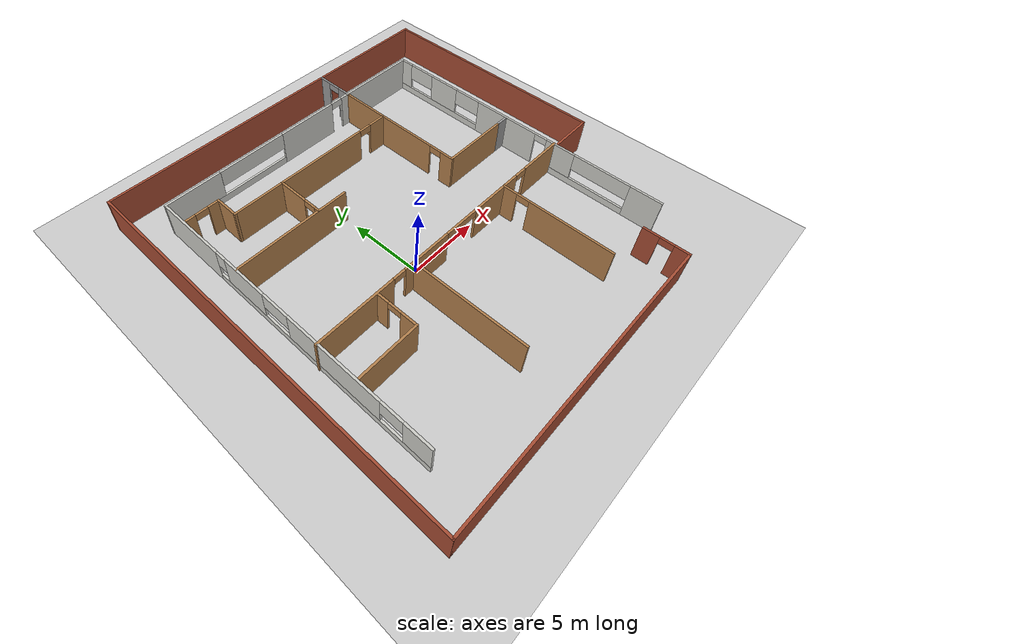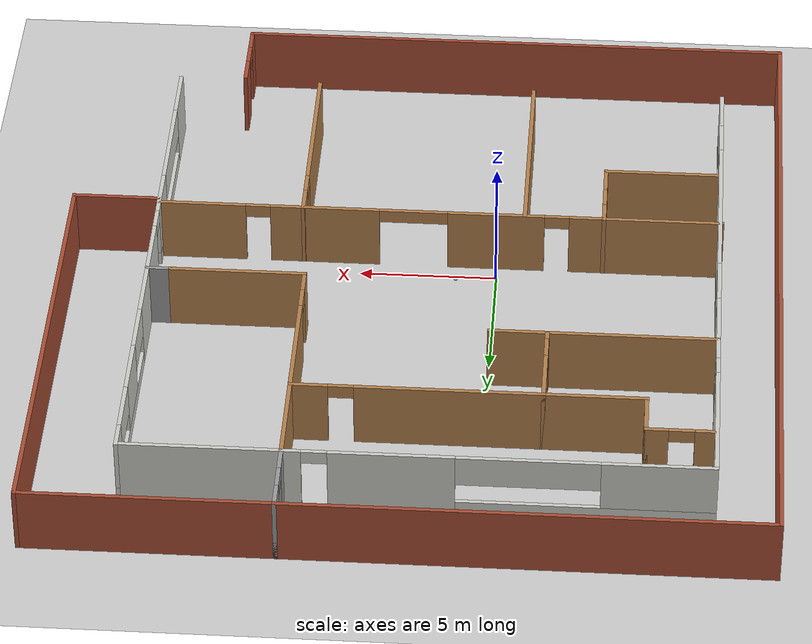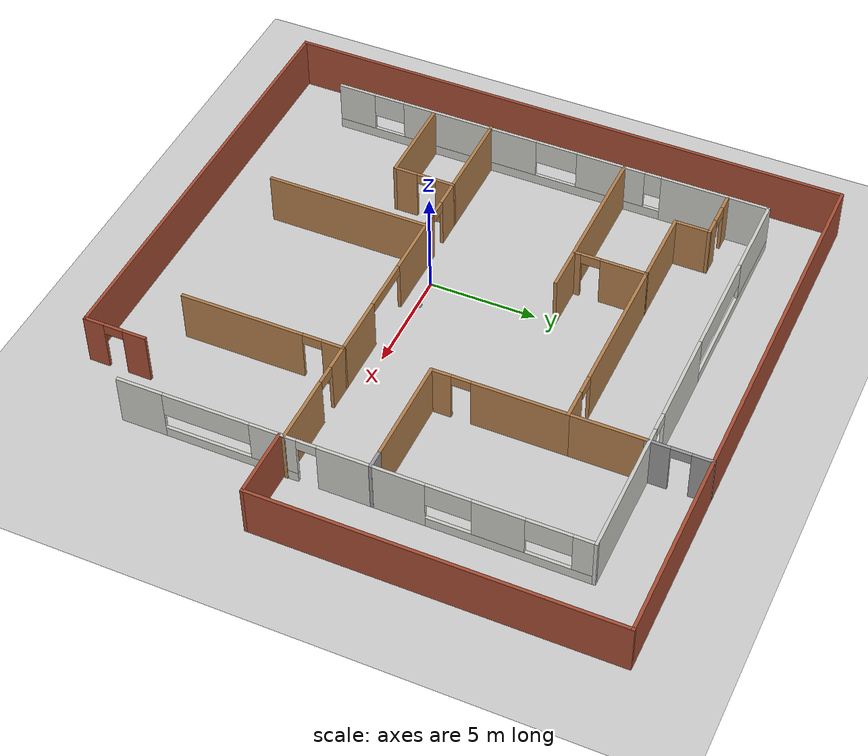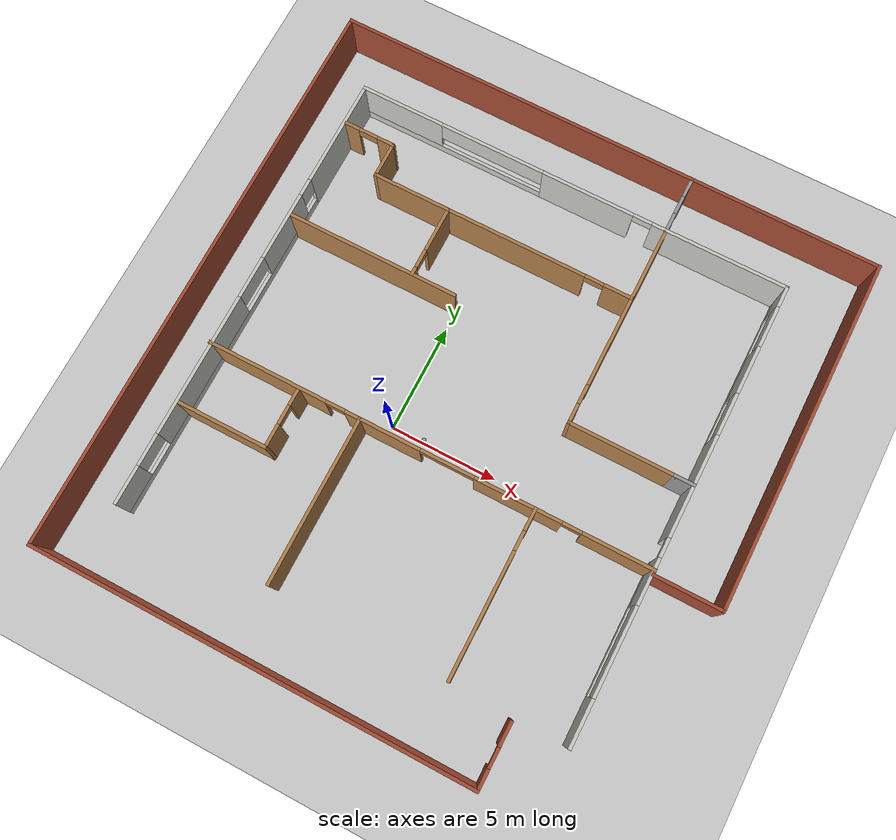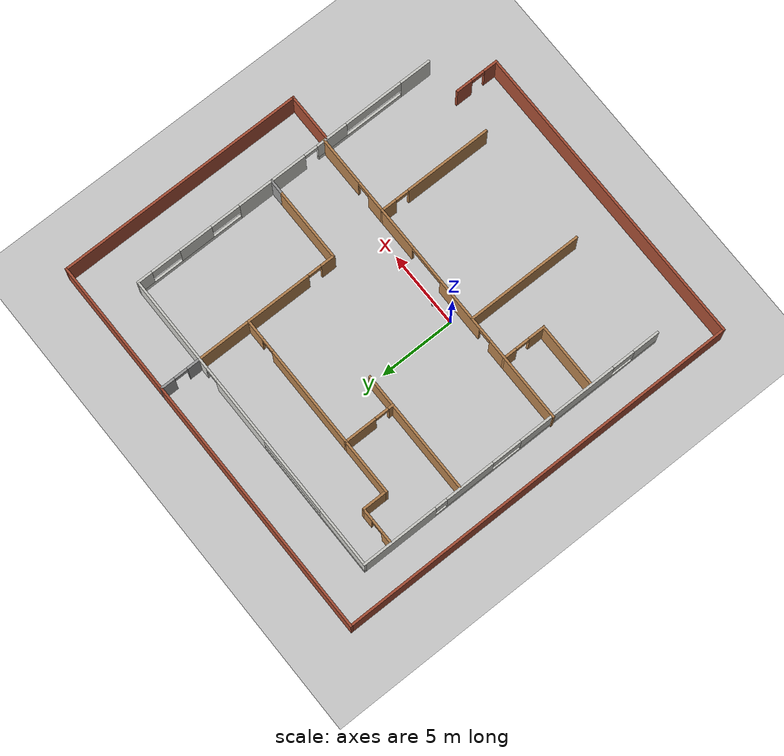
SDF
<sdf version="1.6">
 <world name="default">
  <model name="ground_plane">
   <static>1</static>
   <link name="link">
    <collision name="collision">
     <geometry><plane><normal>0 0 1</normal><size>1000 1000</size></plane></geometry>
     <surface>
      <contact><collide_bitmask>65535</collide_bitmask></contact>
      <friction><ode><mu>100</mu><mu2>50</mu2></ode></friction>
     </surface>
    </collision>
    <visual name="visual">
     <cast_shadows>0</cast_shadows>
     <geometry><plane><normal>0 0 1</normal><size>1000 1000</size></plane></geometry>
     <material>
      <script><uri>file://media/materials/scripts/gazebo.material</uri><name>Gazebo/Grey</name></script>
     </material>
    </visual>
   </link>
  </model>
  <model name="myWorld">
   <pose>2.63259 2.04676 0 0 -0 0</pose>
   <link name="Wall_0">
    <pose>-10.7788 0.167812 0 0 0 -1.5708</pose>
    <visual name="Wall_0_Visual_0">
     <pose>-8.06574 0 1.25 0 -0 0</pose>
     <geometry><box><size>5.11851 0.15 2.5</size></box></geometry>
     <material>
      <script><uri>file://media/materials/scripts/gazebo.material</uri><name>Gazebo/CeilingTiled</name></script>
      <ambient>0.435294 0.796078 0.67451 1</ambient>
     </material>
     <meta><layer>0</layer></meta>
    </visual>
    <collision name="Wall_0_Collision_0">
     <geometry><box><size>5.11851 0.15 2.5</size></box></geometry>
     <pose>-8.06574 0 1.25 0 -0 0</pose>
    </collision>
    <visual name="Wall_0_Visual_1">
     <pose>2.55926 0 0.25 0 -0 0</pose>
     <geometry><box><size>16.1315 0.15 0.5</size></box></geometry>
     <material>
      <script><uri>file://media/materials/scripts/gazebo.material</uri><name>Gazebo/CeilingTiled</name></script>
      <ambient>0.435294 0.796078 0.67451 1</ambient>
     </material>
     <meta><layer>0</layer></meta>
    </visual>
    <collision name="Wall_0_Collision_1">
     <geometry><box><size>16.1315 0.15 0.5</size></box></geometry>
     <pose>2.55926 0 0.25 0 -0 0</pose>
    </collision>
    <visual name="Wall_0_Visual_2">
     <pose>-3.05702 0 1.5 0 -0 0</pose>
     <geometry><box><size>3.29893 0.15 2</size></box></geometry>
     <material>
      <script><uri>file://media/materials/scripts/gazebo.material</uri><name>Gazebo/CeilingTiled</name></script>
      <ambient>0.435294 0.796078 0.67451 1</ambient>
     </material>
     <meta><layer>0</layer></meta>
    </visual>
    <collision name="Wall_0_Collision_2">
     <geometry><box><size>3.29893 0.15 2</size></box></geometry>
     <pose>-3.05702 0 1.5 0 -0 0</pose>
    </collision>
    <visual name="Wall_0_Visual_3">
     <pose>3.95094 0 1.5 0 -0 0</pose>
     <geometry><box><size>6.717 0.15 2</size></box></geometry>
     <material>
      <script><uri>file://media/materials/scripts/gazebo.material</uri><name>Gazebo/CeilingTiled</name></script>
      <ambient>0.435294 0.796078 0.67451 1</ambient>
     </material>
     <meta><layer>0</layer></meta>
    </visual>
    <collision name="Wall_0_Collision_3">
     <geometry><box><size>6.717 0.15 2</size></box></geometry>
     <pose>3.95094 0 1.5 0 -0 0</pose>
    </collision>
    <visual name="Wall_0_Visual_4">
     <pose>9.71722 0 1.5 0 -0 0</pose>
     <geometry><box><size>1.81556 0.15 2</size></box></geometry>
     <material>
      <script><uri>file://media/materials/scripts/gazebo.material</uri><name>Gazebo/CeilingTiled</name></script>
      <ambient>0.435294 0.796078 0.67451 1</ambient>
     </material>
     <meta><layer>0</layer></meta>
    </visual>
    <collision name="Wall_0_Collision_4">
     <geometry><box><size>1.81556 0.15 2</size></box></geometry>
     <pose>9.71722 0 1.5 0 -0 0</pose>
    </collision>
    <visual name="Wall_0_Visual_5">
     <pose>-5.10649 0 1.9 0 -0 0</pose>
     <geometry><box><size>0.8 0.15 1.2</size></box></geometry>
     <material>
      <script><uri>file://media/materials/scripts/gazebo.material</uri><name>Gazebo/CeilingTiled</name></script>
      <ambient>0.435294 0.796078 0.67451 1</ambient>
     </material>
     <meta><layer>0</layer></meta>
    </visual>
    <collision name="Wall_0_Collision_5">
     <geometry><box><size>0.8 0.15 1.2</size></box></geometry>
     <pose>-5.10649 0 1.9 0 -0 0</pose>
    </collision>
    <visual name="Wall_0_Visual_6">
     <pose>-0.407555 0 1.9 0 -0 0</pose>
     <geometry><box><size>2 0.15 1.2</size></box></geometry>
     <material>
      <script><uri>file://media/materials/scripts/gazebo.material</uri><name>Gazebo/CeilingTiled</name></script>
      <ambient>0.435294 0.796078 0.67451 1</ambient>
     </material>
     <meta><layer>0</layer></meta>
    </visual>
    <collision name="Wall_0_Collision_6">
     <geometry><box><size>2 0.15 1.2</size></box></geometry>
     <pose>-0.407555 0 1.9 0 -0 0</pose>
    </collision>
    <visual name="Wall_0_Visual_7">
     <pose>8.05945 0 1.9 0 -0 0</pose>
     <geometry><box><size>1.5 0.15 1.2</size></box></geometry>
     <material>
      <script><uri>file://media/materials/scripts/gazebo.material</uri><name>Gazebo/CeilingTiled</name></script>
      <ambient>0.435294 0.796078 0.67451 1</ambient>
     </material>
     <meta><layer>0</layer></meta>
    </visual>
    <collision name="Wall_0_Collision_7">
     <geometry><box><size>1.5 0.15 1.2</size></box></geometry>
     <pose>8.05945 0 1.9 0 -0 0</pose>
    </collision>
   </link>
   <link name="Wall_10">
    <collision name="Wall_10_Collision">
     <geometry><box><size>7.75 0.15 2.5</size></box></geometry>
     <pose>0 0 1.25 0 -0 0</pose>
    </collision>
    <visual name="Wall_10_Visual">
     <pose>0 0 1.25 0 -0 0</pose>
     <geometry><box><size>7.75 0.15 2.5</size></box></geometry>
     <material>
      <script><uri>file://media/materials/scripts/gazebo.material</uri><name>Gazebo/Wood</name></script>
      <ambient>1 1 1 1</ambient>
     </material>
     <meta><layer>0</layer></meta>
    </visual>
    <pose>-3.63916 -6.5453 0 0 0 -1.5708</pose>
   </link>
   <link name="Wall_109">
    <pose>4.125 12 0 0 -0 1.5708</pose>
    <visual name="Wall_109_Visual_0">
     <pose>-0.939554 0 1.25 0 -0 0</pose>
     <geometry><box><size>1.12089 0.15 2.5</size></box></geometry>
     <material>
      <script><uri>file://media/materials/scripts/gazebo.material</uri><name>Gazebo/Grey</name></script>
      <ambient>1 1 1 1</ambient>
     </material>
     <meta><layer>0</layer></meta>
    </visual>
    <collision name="Wall_109_Collision_0">
     <geometry><box><size>1.12089 0.15 2.5</size></box></geometry>
     <pose>-0.939554 0 1.25 0 -0 0</pose>
    </collision>
    <visual name="Wall_109_Visual_1">
     <pose>1.01045 0 1.25 0 -0 0</pose>
     <geometry><box><size>0.979109 0.15 2.5</size></box></geometry>
     <material>
      <script><uri>file://media/materials/scripts/gazebo.material</uri><name>Gazebo/Grey</name></script>
      <ambient>1 1 1 1</ambient>
     </material>
     <meta><layer>0</layer></meta>
    </visual>
    <collision name="Wall_109_Collision_1">
     <geometry><box><size>0.979109 0.15 2.5</size></box></geometry>
     <pose>1.01045 0 1.25 0 -0 0</pose>
    </collision>
    <visual name="Wall_109_Visual_2">
     <pose>0.070891 0 2.25 0 -0 0</pose>
     <geometry><box><size>0.9 0.15 0.5</size></box></geometry>
     <material>
      <script><uri>file://media/materials/scripts/gazebo.material</uri><name>Gazebo/Grey</name></script>
      <ambient>1 1 1 1</ambient>
     </material>
     <meta><layer>0</layer></meta>
    </visual>
    <collision name="Wall_109_Collision_2">
     <geometry><box><size>0.9 0.15 0.5</size></box></geometry>
     <pose>0.070891 0 2.25 0 -0 0</pose>
    </collision>
   </link>
   <link name="Wall_110">
    <collision name="Wall_110_Collision">
     <geometry><box><size>17.25 0.15 2.5</size></box></geometry>
     <pose>0 0 1.25 0 -0 0</pose>
    </collision>
    <visual name="Wall_110_Visual">
     <pose>0 0 1.25 0 -0 0</pose>
     <geometry><box><size>17.25 0.15 2.5</size></box></geometry>
     <material>
      <script><uri>file://media/materials/scripts/gazebo.material</uri><name>Gazebo/Bricks</name></script>
      <ambient>1 1 1 1</ambient>
     </material>
     <meta><layer>0</layer></meta>
    </visual>
    <pose>-4.425 13.425 0 0 -0 3.14159</pose>
   </link>
   <link name="Wall_111">
    <collision name="Wall_111_Collision">
     <geometry><box><size>27 0.15 2.5</size></box></geometry>
     <pose>0 0 1.25 0 -0 0</pose>
    </collision>
    <visual name="Wall_111_Visual">
     <pose>0 0 1.25 0 -0 0</pose>
     <geometry><box><size>27 0.15 2.5</size></box></geometry>
     <material>
      <script><uri>file://media/materials/scripts/gazebo.material</uri><name>Gazebo/Bricks</name></script>
      <ambient>1 1 1 1</ambient>
     </material>
     <meta><layer>0</layer></meta>
    </visual>
    <pose>-12.975 0 0 0 0 -1.5708</pose>
   </link>
   <link name="Wall_112">
    <collision name="Wall_112_Collision">
     <geometry><box><size>20.5 0.15 2.5</size></box></geometry>
     <pose>0 0 1.25 0 -0 0</pose>
    </collision>
    <visual name="Wall_112_Visual">
     <pose>0 0 1.25 0 -0 0</pose>
     <geometry><box><size>20.5 0.15 2.5</size></box></geometry>
     <material>
      <script><uri>file://media/materials/scripts/gazebo.material</uri><name>Gazebo/Bricks</name></script>
      <ambient>1 1 1 1</ambient>
     </material>
     <meta><layer>0</layer></meta>
    </visual>
    <pose>-2.8 -13.425 0 0 -0 0</pose>
   </link>
   <link name="Wall_113">
    <pose>7.375 -12 0 0 -0 1.5708</pose>
    <visual name="Wall_113_Visual_0">
     <pose>-1.00437 0 1.25 0 -0 0</pose>
     <geometry><box><size>0.991263 0.15 2.5</size></box></geometry>
     <material>
      <script><uri>file://media/materials/scripts/gazebo.material</uri><name>Gazebo/Bricks</name></script>
      <ambient>1 1 1 1</ambient>
     </material>
     <meta><layer>0</layer></meta>
    </visual>
    <collision name="Wall_113_Collision_0">
     <geometry><box><size>0.991263 0.15 2.5</size></box></geometry>
     <pose>-1.00437 0 1.25 0 -0 0</pose>
    </collision>
    <visual name="Wall_113_Visual_1">
     <pose>0.945632 0 1.25 0 -0 0</pose>
     <geometry><box><size>1.10874 0.15 2.5</size></box></geometry>
     <material>
      <script><uri>file://media/materials/scripts/gazebo.material</uri><name>Gazebo/Bricks</name></script>
      <ambient>1 1 1 1</ambient>
     </material>
     <meta><layer>0</layer></meta>
    </visual>
    <collision name="Wall_113_Collision_1">
     <geometry><box><size>1.10874 0.15 2.5</size></box></geometry>
     <pose>0.945632 0 1.25 0 -0 0</pose>
    </collision>
    <visual name="Wall_113_Visual_2">
     <pose>-0.058737 0 2.25 0 -0 0</pose>
     <geometry><box><size>0.9 0.15 0.5</size></box></geometry>
     <material>
      <script><uri>file://media/materials/scripts/gazebo.material</uri><name>Gazebo/Bricks</name></script>
      <ambient>1 1 1 1</ambient>
     </material>
     <meta><layer>0</layer></meta>
    </visual>
    <collision name="Wall_113_Collision_2">
     <geometry><box><size>0.9 0.15 0.5</size></box></geometry>
     <pose>-0.058737 0 2.25 0 -0 0</pose>
    </collision>
   </link>
   <link name="Wall_115">
    <collision name="Wall_115_Collision">
     <geometry><box><size>9 0.15 2.5</size></box></geometry>
     <pose>0 0 1.25 0 -0 0</pose>
    </collision>
    <visual name="Wall_115_Visual">
     <pose>0 0 1.25 0 -0 0</pose>
     <geometry><box><size>9 0.15 2.5</size></box></geometry>
     <material>
      <script><uri>file://media/materials/scripts/gazebo.material</uri><name>Gazebo/Bricks</name></script>
      <ambient>1 1 1 1</ambient>
     </material>
     <meta><layer>0</layer></meta>
    </visual>
    <pose>8.55 13.425 0 0 -0 0</pose>
   </link>
   <link name="Wall_116">
    <collision name="Wall_116_Collision">
     <geometry><box><size>16.5 0.15 2.5</size></box></geometry>
     <pose>0 0 1.25 0 -0 0</pose>
    </collision>
    <visual name="Wall_116_Visual">
     <pose>0 0 1.25 0 -0 0</pose>
     <geometry><box><size>16.5 0.15 2.5</size></box></geometry>
     <material>
      <script><uri>file://media/materials/scripts/gazebo.material</uri><name>Gazebo/Bricks</name></script>
      <ambient>1 1 1 1</ambient>
     </material>
     <meta><layer>0</layer></meta>
    </visual>
    <pose>12.975 5.25 0 0 0 -1.5708</pose>
   </link>
   <link name="Wall_117">
    <collision name="Wall_117_Collision">
     <geometry><box><size>3.25 0.15 2.5</size></box></geometry>
     <pose>0 0 1.25 0 -0 0</pose>
    </collision>
    <visual name="Wall_117_Visual">
     <pose>0 0 1.25 0 -0 0</pose>
     <geometry><box><size>3.25 0.15 2.5</size></box></geometry>
     <material>
      <script><uri>file://media/materials/scripts/gazebo.material</uri><name>Gazebo/Bricks</name></script>
      <ambient>1 1 1 1</ambient>
     </material>
     <meta><layer>0</layer></meta>
    </visual>
    <pose>11.425 -2.925 0 0 -0 3.14159</pose>
   </link>
   <link name="Wall_12">
    <collision name="Wall_12_Collision">
     <geometry><box><size>8.25 0.15 2.5</size></box></geometry>
     <pose>0 0 1.25 0 -0 0</pose>
    </collision>
    <visual name="Wall_12_Visual">
     <pose>0 0 1.25 0 -0 0</pose>
     <geometry><box><size>8.25 0.15 2.5</size></box></geometry>
     <material>
      <script><uri>file://media/materials/scripts/gazebo.material</uri><name>Gazebo/Wood</name></script>
      <ambient>1 1 1 1</ambient>
     </material>
     <meta><layer>0</layer></meta>
    </visual>
    <pose>-6.72078 3.875 0 0 -0 0</pose>
   </link>
   <link name="Wall_14">
    <pose>-4.725 5.55 0 0 -0 1.5708</pose>
    <visual name="Wall_14_Visual_0">
     <pose>-1.54025 0 1.25 0 -0 0</pose>
     <geometry><box><size>0.419489 0.15 2.5</size></box></geometry>
     <material>
      <script><uri>file://media/materials/scripts/gazebo.material</uri><name>Gazebo/Wood</name></script>
      <ambient>1 1 1 1</ambient>
     </material>
     <meta><layer>0</layer></meta>
    </visual>
    <collision name="Wall_14_Collision_0">
     <geometry><box><size>0.419489 0.15 2.5</size></box></geometry>
     <pose>-1.54025 0 1.25 0 -0 0</pose>
    </collision>
    <visual name="Wall_14_Visual_1">
     <pose>0.659745 0 1.25 0 -0 0</pose>
     <geometry><box><size>2.18051 0.15 2.5</size></box></geometry>
     <material>
      <script><uri>file://media/materials/scripts/gazebo.material</uri><name>Gazebo/Wood</name></script>
      <ambient>1 1 1 1</ambient>
     </material>
     <meta><layer>0</layer></meta>
    </visual>
    <collision name="Wall_14_Collision_1">
     <geometry><box><size>2.18051 0.15 2.5</size></box></geometry>
     <pose>0.659745 0 1.25 0 -0 0</pose>
    </collision>
    <visual name="Wall_14_Visual_2">
     <pose>-0.880511 0 2.25 0 -0 0</pose>
     <geometry><box><size>0.9 0.15 0.5</size></box></geometry>
     <material>
      <script><uri>file://media/materials/scripts/gazebo.material</uri><name>Gazebo/Wood</name></script>
      <ambient>1 1 1 1</ambient>
     </material>
     <meta><layer>0</layer></meta>
    </visual>
    <collision name="Wall_14_Collision_2">
     <geometry><box><size>0.9 0.15 0.5</size></box></geometry>
     <pose>-0.880511 0 2.25 0 -0 0</pose>
    </collision>
   </link>
   <link name="Wall_15">
    <pose>-0.299999 7.225 0 0 -0 0</pose>
    <visual name="Wall_15_Visual_0">
     <pose>-1.14864 0 1.25 0 -0 0</pose>
     <geometry><box><size>6.70272 0.15 2.5</size></box></geometry>
     <material>
      <script><uri>file://media/materials/scripts/gazebo.material</uri><name>Gazebo/Wood</name></script>
      <ambient>1 1 1 1</ambient>
     </material>
     <meta><layer>0</layer></meta>
    </visual>
    <collision name="Wall_15_Collision_0">
     <geometry><box><size>6.70272 0.15 2.5</size></box></geometry>
     <pose>-1.14864 0 1.25 0 -0 0</pose>
    </collision>
    <visual name="Wall_15_Visual_1">
     <pose>3.80136 0 1.25 0 -0 0</pose>
     <geometry><box><size>1.39728 0.15 2.5</size></box></geometry>
     <material>
      <script><uri>file://media/materials/scripts/gazebo.material</uri><name>Gazebo/Wood</name></script>
      <ambient>1 1 1 1</ambient>
     </material>
     <meta><layer>0</layer></meta>
    </visual>
    <collision name="Wall_15_Collision_1">
     <geometry><box><size>1.39728 0.15 2.5</size></box></geometry>
     <pose>3.80136 0 1.25 0 -0 0</pose>
    </collision>
    <visual name="Wall_15_Visual_2">
     <pose>2.65272 0 2.25 0 -0 0</pose>
     <geometry><box><size>0.9 0.15 0.5</size></box></geometry>
     <material>
      <script><uri>file://media/materials/scripts/gazebo.material</uri><name>Gazebo/Wood</name></script>
      <ambient>1 1 1 1</ambient>
     </material>
     <meta><layer>0</layer></meta>
    </visual>
    <collision name="Wall_15_Collision_2">
     <geometry><box><size>0.9 0.15 0.5</size></box></geometry>
     <pose>2.65272 0 2.25 0 -0 0</pose>
    </collision>
   </link>
   <link name="Wall_16">
    <pose>4.125 4.175 0 0 0 -1.5708</pose>
    <visual name="Wall_16_Visual_0">
     <pose>-0.941433 0 1.25 0 -0 0</pose>
     <geometry><box><size>4.36714 0.15 2.5</size></box></geometry>
     <material>
      <script><uri>file://media/materials/scripts/gazebo.material</uri><name>Gazebo/Wood</name></script>
      <ambient>1 1 1 1</ambient>
     </material>
     <meta><layer>0</layer></meta>
    </visual>
    <collision name="Wall_16_Collision_0">
     <geometry><box><size>4.36714 0.15 2.5</size></box></geometry>
     <pose>-0.941433 0 1.25 0 -0 0</pose>
    </collision>
    <visual name="Wall_16_Visual_1">
     <pose>2.63357 0 1.25 0 -0 0</pose>
     <geometry><box><size>0.982865 0.15 2.5</size></box></geometry>
     <material>
      <script><uri>file://media/materials/scripts/gazebo.material</uri><name>Gazebo/Wood</name></script>
      <ambient>1 1 1 1</ambient>
     </material>
     <meta><layer>0</layer></meta>
    </visual>
    <collision name="Wall_16_Collision_1">
     <geometry><box><size>0.982865 0.15 2.5</size></box></geometry>
     <pose>2.63357 0 1.25 0 -0 0</pose>
    </collision>
    <visual name="Wall_16_Visual_2">
     <pose>1.69213 0 2.25 0 -0 0</pose>
     <geometry><box><size>0.9 0.15 0.5</size></box></geometry>
     <material>
      <script><uri>file://media/materials/scripts/gazebo.material</uri><name>Gazebo/Wood</name></script>
      <ambient>1 1 1 1</ambient>
     </material>
     <meta><layer>0</layer></meta>
    </visual>
    <collision name="Wall_16_Collision_2">
     <geometry><box><size>0.9 0.15 0.5</size></box></geometry>
     <pose>1.69213 0 2.25 0 -0 0</pose>
    </collision>
   </link>
   <link name="Wall_17">
    <collision name="Wall_17_Collision">
     <geometry><box><size>5 0.15 2.5</size></box></geometry>
     <pose>0 0 1.25 0 -0 0</pose>
    </collision>
    <visual name="Wall_17_Visual">
     <pose>0 0 1.25 0 -0 0</pose>
     <geometry><box><size>5 0.15 2.5</size></box></geometry>
     <material>
      <script><uri>file://media/materials/scripts/gazebo.material</uri><name>Gazebo/Wood</name></script>
      <ambient>1 1 1 1</ambient>
     </material>
     <meta><layer>0</layer></meta>
    </visual>
    <pose>6.55 1.125 0 0 -0 0</pose>
   </link>
   <link name="Wall_18">
    <collision name="Wall_18_Collision">
     <geometry><box><size>1 0.15 2.5</size></box></geometry>
     <pose>0 0 1.25 0 -0 0</pose>
    </collision>
    <visual name="Wall_18_Visual">
     <pose>0 0 1.25 0 -0 0</pose>
     <geometry><box><size>1 0.15 2.5</size></box></geometry>
     <material>
      <script><uri>file://media/materials/scripts/gazebo.material</uri><name>Gazebo/Grey</name></script>
      <ambient>1 1 1 1</ambient>
     </material>
     <meta><layer>0</layer></meta>
    </visual>
    <pose>9.4 1.125 0 0 -0 0</pose>
   </link>
   <link name="Wall_2">
    <pose>9.82118 0.167812 0 0 -0 1.5708</pose>
    <visual name="Wall_2_Visual_0">
     <pose>-9.55148 0 1.25 0 -0 0</pose>
     <geometry><box><size>2.14703 0.15 2.5</size></box></geometry>
     <material>
      <script><uri>file://media/materials/scripts/gazebo.material</uri><name>Gazebo/CeilingTiled</name></script>
      <ambient>0.435294 0.796078 0.67451 1</ambient>
     </material>
     <meta><layer>0</layer></meta>
    </visual>
    <collision name="Wall_2_Collision_0">
     <geometry><box><size>2.14703 0.15 2.5</size></box></geometry>
     <pose>-9.55148 0 1.25 0 -0 0</pose>
    </collision>
    <visual name="Wall_2_Visual_1">
     <pose>0.932508 0 1.25 0 -0 0</pose>
     <geometry><box><size>4.76615 0.15 2.5</size></box></geometry>
     <material>
      <script><uri>file://media/materials/scripts/gazebo.material</uri><name>Gazebo/CeilingTiled</name></script>
      <ambient>0.435294 0.796078 0.67451 1</ambient>
     </material>
     <meta><layer>0</layer></meta>
    </visual>
    <collision name="Wall_2_Collision_1">
     <geometry><box><size>4.76615 0.15 2.5</size></box></geometry>
     <pose>0.932508 0 1.25 0 -0 0</pose>
    </collision>
    <visual name="Wall_2_Visual_2">
     <pose>-5.41427 0 0.25 0 -0 0</pose>
     <geometry><box><size>6.1274 0.15 0.5</size></box></geometry>
     <material>
      <script><uri>file://media/materials/scripts/gazebo.material</uri><name>Gazebo/CeilingTiled</name></script>
      <ambient>0.435294 0.796078 0.67451 1</ambient>
     </material>
     <meta><layer>0</layer></meta>
    </visual>
    <collision name="Wall_2_Collision_2">
     <geometry><box><size>6.1274 0.15 0.5</size></box></geometry>
     <pose>-5.41427 0 0.25 0 -0 0</pose>
    </collision>
    <visual name="Wall_2_Visual_3">
     <pose>6.97029 0 0.25 0 -0 0</pose>
     <geometry><box><size>7.30942 0.15 0.5</size></box></geometry>
     <material>
      <script><uri>file://media/materials/scripts/gazebo.material</uri><name>Gazebo/CeilingTiled</name></script>
      <ambient>0.435294 0.796078 0.67451 1</ambient>
     </material>
     <meta><layer>0</layer></meta>
    </visual>
    <collision name="Wall_2_Collision_3">
     <geometry><box><size>7.30942 0.15 0.5</size></box></geometry>
     <pose>6.97029 0 0.25 0 -0 0</pose>
    </collision>
    <visual name="Wall_2_Visual_4">
     <pose>-3.41427 0 1.5 0 -0 0</pose>
     <geometry><box><size>2.1274 0.15 2</size></box></geometry>
     <material>
      <script><uri>file://media/materials/scripts/gazebo.material</uri><name>Gazebo/CeilingTiled</name></script>
      <ambient>0.435294 0.796078 0.67451 1</ambient>
     </material>
     <meta><layer>0</layer></meta>
    </visual>
    <collision name="Wall_2_Collision_4">
     <geometry><box><size>2.1274 0.15 2</size></box></geometry>
     <pose>-3.41427 0 1.5 0 -0 0</pose>
    </collision>
    <visual name="Wall_2_Visual_5">
     <pose>-3.41427 0 1.5 0 -0 0</pose>
     <geometry><box><size>2.1274 0.15 2</size></box></geometry>
     <material>
      <script><uri>file://media/materials/scripts/gazebo.material</uri><name>Gazebo/CeilingTiled</name></script>
      <ambient>0.435294 0.796078 0.67451 1</ambient>
     </material>
     <meta><layer>0</layer></meta>
    </visual>
    <collision name="Wall_2_Collision_5">
     <geometry><box><size>2.1274 0.15 2</size></box></geometry>
     <pose>-3.41427 0 1.5 0 -0 0</pose>
    </collision>
    <visual name="Wall_2_Visual_6">
     <pose>6.45568 0 1.5 0 -0 0</pose>
     <geometry><box><size>2.2802 0.15 2</size></box></geometry>
     <material>
      <script><uri>file://media/materials/scripts/gazebo.material</uri><name>Gazebo/CeilingTiled</name></script>
      <ambient>0.435294 0.796078 0.67451 1</ambient>
     </material>
     <meta><layer>0</layer></meta>
    </visual>
    <collision name="Wall_2_Collision_6">
     <geometry><box><size>2.2802 0.15 2</size></box></geometry>
     <pose>6.45568 0 1.5 0 -0 0</pose>
    </collision>
    <visual name="Wall_2_Visual_7">
     <pose>10.1104 0 1.5 0 -0 0</pose>
     <geometry><box><size>1.02922 0.15 2</size></box></geometry>
     <material>
      <script><uri>file://media/materials/scripts/gazebo.material</uri><name>Gazebo/CeilingTiled</name></script>
      <ambient>0.435294 0.796078 0.67451 1</ambient>
     </material>
     <meta><layer>0</layer></meta>
    </visual>
    <collision name="Wall_2_Collision_7">
     <geometry><box><size>1.02922 0.15 2</size></box></geometry>
     <pose>10.1104 0 1.5 0 -0 0</pose>
    </collision>
    <visual name="Wall_2_Visual_8">
     <pose>-6.47797 0 1.9 0 -0 0</pose>
     <geometry><box><size>4 0.15 1.2</size></box></geometry>
     <material>
      <script><uri>file://media/materials/scripts/gazebo.material</uri><name>Gazebo/CeilingTiled</name></script>
      <ambient>0.435294 0.796078 0.67451 1</ambient>
     </material>
     <meta><layer>0</layer></meta>
    </visual>
    <collision name="Wall_2_Collision_8">
     <geometry><box><size>4 0.15 1.2</size></box></geometry>
     <pose>-6.47797 0 1.9 0 -0 0</pose>
    </collision>
    <visual name="Wall_2_Visual_9">
     <pose>4.31558 0 1.9 0 -0 0</pose>
     <geometry><box><size>2 0.15 1.2</size></box></geometry>
     <material>
      <script><uri>file://media/materials/scripts/gazebo.material</uri><name>Gazebo/CeilingTiled</name></script>
      <ambient>0.435294 0.796078 0.67451 1</ambient>
     </material>
     <meta><layer>0</layer></meta>
    </visual>
    <collision name="Wall_2_Collision_9">
     <geometry><box><size>2 0.15 1.2</size></box></geometry>
     <pose>4.31558 0 1.9 0 -0 0</pose>
    </collision>
    <visual name="Wall_2_Visual_10">
     <pose>8.59578 0 1.9 0 -0 0</pose>
     <geometry><box><size>2 0.15 1.2</size></box></geometry>
     <material>
      <script><uri>file://media/materials/scripts/gazebo.material</uri><name>Gazebo/CeilingTiled</name></script>
      <ambient>0.435294 0.796078 0.67451 1</ambient>
     </material>
     <meta><layer>0</layer></meta>
    </visual>
    <collision name="Wall_2_Collision_10">
     <geometry><box><size>2 0.15 1.2</size></box></geometry>
     <pose>8.59578 0 1.9 0 -0 0</pose>
    </collision>
    <visual name="Wall_2_Visual_11">
     <pose>-1.90057 0 2.25 0 -0 0</pose>
     <geometry><box><size>0.9 0.15 0.5</size></box></geometry>
     <material>
      <script><uri>file://media/materials/scripts/gazebo.material</uri><name>Gazebo/CeilingTiled</name></script>
      <ambient>0.435294 0.796078 0.67451 1</ambient>
     </material>
     <meta><layer>0</layer></meta>
    </visual>
    <collision name="Wall_2_Collision_11">
     <geometry><box><size>0.9 0.15 0.5</size></box></geometry>
     <pose>-1.90057 0 2.25 0 -0 0</pose>
    </collision>
    <visual name="Wall_2_Visual_12">
     <pose>-1.90057 0 2.25 0 -0 0</pose>
     <geometry><box><size>0.9 0.15 0.5</size></box></geometry>
     <material>
      <script><uri>file://media/materials/scripts/gazebo.material</uri><name>Gazebo/CeilingTiled</name></script>
      <ambient>0.435294 0.796078 0.67451 1</ambient>
     </material>
     <meta><layer>0</layer></meta>
    </visual>
    <collision name="Wall_2_Collision_12">
     <geometry><box><size>0.9 0.15 0.5</size></box></geometry>
     <pose>-1.90057 0 2.25 0 -0 0</pose>
    </collision>
   </link>
   <link name="Wall_20">
    <collision name="Wall_20_Collision">
     <geometry><box><size>3.5 0.15 2.5</size></box></geometry>
     <pose>0 0 1.25 0 -0 0</pose>
    </collision>
    <visual name="Wall_20_Visual">
     <pose>0 0 1.25 0 -0 0</pose>
     <geometry><box><size>3.5 0.15 2.5</size></box></geometry>
     <material>
      <script><uri>file://media/materials/scripts/gazebo.material</uri><name>Gazebo/Wood</name></script>
      <ambient>1 1 1 1</ambient>
     </material>
     <meta><layer>0</layer></meta>
    </visual>
    <pose>4.125 8.9 0 0 -0 1.5708</pose>
   </link>
   <link name="Wall_22">
    <collision name="Wall_22_Collision">
     <geometry><box><size>3.75 0.15 2.5</size></box></geometry>
     <pose>0 0 1.25 0 -0 0</pose>
    </collision>
    <visual name="Wall_22_Visual">
     <pose>0 0 1.25 0 -0 0</pose>
     <geometry><box><size>3.75 0.15 2.5</size></box></geometry>
     <material>
      <script><uri>file://media/materials/scripts/gazebo.material</uri><name>Gazebo/Wood</name></script>
      <ambient>1 1 1 1</ambient>
     </material>
     <meta><layer>0</layer></meta>
    </visual>
    <pose>-6.525 7.225 0 0 -0 3.14159</pose>
   </link>
   <link name="Wall_23">
    <collision name="Wall_23_Collision">
     <geometry><box><size>1.75 0.15 2.5</size></box></geometry>
     <pose>0 0 1.25 0 -0 0</pose>
    </collision>
    <visual name="Wall_23_Visual">
     <pose>0 0 1.25 0 -0 0</pose>
     <geometry><box><size>1.75 0.15 2.5</size></box></geometry>
     <material>
      <script><uri>file://media/materials/scripts/gazebo.material</uri><name>Gazebo/Wood</name></script>
      <ambient>1 1 1 1</ambient>
     </material>
     <meta><layer>0</layer></meta>
    </visual>
    <pose>-8.325 8.025 0 0 -0 1.5708</pose>
   </link>
   <link name="Wall_24">
    <pose>-9.5 8.825 0 0 -0 3.14159</pose>
    <visual name="Wall_24_Visual_0">
     <pose>-0.821298 0 1.25 0 -0 0</pose>
     <geometry><box><size>0.857405 0.15 2.5</size></box></geometry>
     <material>
      <script><uri>file://media/materials/scripts/gazebo.material</uri><name>Gazebo/Wood</name></script>
      <ambient>1 1 1 1</ambient>
     </material>
     <meta><layer>0</layer></meta>
    </visual>
    <collision name="Wall_24_Collision_0">
     <geometry><box><size>0.857405 0.15 2.5</size></box></geometry>
     <pose>-0.821298 0 1.25 0 -0 0</pose>
    </collision>
    <visual name="Wall_24_Visual_1">
     <pose>0.878702 0 1.25 0 -0 0</pose>
     <geometry><box><size>0.742595 0.15 2.5</size></box></geometry>
     <material>
      <script><uri>file://media/materials/scripts/gazebo.material</uri><name>Gazebo/Wood</name></script>
      <ambient>1 1 1 1</ambient>
     </material>
     <meta><layer>0</layer></meta>
    </visual>
    <collision name="Wall_24_Collision_1">
     <geometry><box><size>0.742595 0.15 2.5</size></box></geometry>
     <pose>0.878702 0 1.25 0 -0 0</pose>
    </collision>
    <visual name="Wall_24_Visual_2">
     <pose>0.057405 0 2.25 0 -0 0</pose>
     <geometry><box><size>0.9 0.15 0.5</size></box></geometry>
     <material>
      <script><uri>file://media/materials/scripts/gazebo.material</uri><name>Gazebo/Wood</name></script>
      <ambient>1 1 1 1</ambient>
     </material>
     <meta><layer>0</layer></meta>
    </visual>
    <collision name="Wall_24_Collision_2">
     <geometry><box><size>0.9 0.15 0.5</size></box></geometry>
     <pose>0.057405 0 2.25 0 -0 0</pose>
    </collision>
   </link>
   <link name="Wall_26">
    <pose>-6.53335 -4.15281 0 0 0 -1.5708</pose>
    <visual name="Wall_26_Visual_0">
     <pose>-1.03617 0 1.25 0 -0 0</pose>
     <geometry><box><size>0.927669 0.15 2.5</size></box></geometry>
     <material>
      <script><uri>file://media/materials/scripts/gazebo.material</uri><name>Gazebo/Wood</name></script>
      <ambient>1 1 1 1</ambient>
     </material>
     <meta><layer>0</layer></meta>
    </visual>
    <collision name="Wall_26_Collision_0">
     <geometry><box><size>0.927669 0.15 2.5</size></box></geometry>
     <pose>-1.03617 0 1.25 0 -0 0</pose>
    </collision>
    <visual name="Wall_26_Visual_1">
     <pose>0.913835 0 1.25 0 -0 0</pose>
     <geometry><box><size>1.17233 0.15 2.5</size></box></geometry>
     <material>
      <script><uri>file://media/materials/scripts/gazebo.material</uri><name>Gazebo/Wood</name></script>
      <ambient>1 1 1 1</ambient>
     </material>
     <meta><layer>0</layer></meta>
    </visual>
    <collision name="Wall_26_Collision_1">
     <geometry><box><size>1.17233 0.15 2.5</size></box></geometry>
     <pose>0.913835 0 1.25 0 -0 0</pose>
    </collision>
    <visual name="Wall_26_Visual_2">
     <pose>-0.122331 0 2.25 0 -0 0</pose>
     <geometry><box><size>0.9 0.15 0.5</size></box></geometry>
     <material>
      <script><uri>file://media/materials/scripts/gazebo.material</uri><name>Gazebo/Wood</name></script>
      <ambient>1 1 1 1</ambient>
     </material>
     <meta><layer>0</layer></meta>
    </visual>
    <collision name="Wall_26_Collision_2">
     <geometry><box><size>0.9 0.15 0.5</size></box></geometry>
     <pose>-0.122331 0 2.25 0 -0 0</pose>
    </collision>
   </link>
   <link name="Wall_27">
    <collision name="Wall_27_Collision">
     <geometry><box><size>4.25 0.15 2.5</size></box></geometry>
     <pose>0 0 1.25 0 -0 0</pose>
    </collision>
    <visual name="Wall_27_Visual">
     <pose>0 0 1.25 0 -0 0</pose>
     <geometry><box><size>4.25 0.15 2.5</size></box></geometry>
     <material>
      <script><uri>file://media/materials/scripts/gazebo.material</uri><name>Gazebo/Wood</name></script>
      <ambient>1 1 1 1</ambient>
     </material>
     <meta><layer>0</layer></meta>
    </visual>
    <pose>-8.58335 -5.57781 0 0 -0 3.14159</pose>
   </link>
   <link name="Wall_3">
    <pose>-0.478823 10.7178 0 0 -0 3.14159</pose>
    <visual name="Wall_3_Visual_0">
     <pose>-7.15394 0 1.25 0 -0 0</pose>
     <geometry><box><size>6.44212 0.15 2.5</size></box></geometry>
     <material>
      <script><uri>file://media/materials/scripts/gazebo.material</uri><name>Gazebo/CeilingTiled</name></script>
      <ambient>0.435294 0.796078 0.67451 1</ambient>
     </material>
     <meta><layer>0</layer></meta>
    </visual>
    <collision name="Wall_3_Collision_0">
     <geometry><box><size>6.44212 0.15 2.5</size></box></geometry>
     <pose>-7.15394 0 1.25 0 -0 0</pose>
    </collision>
    <visual name="Wall_3_Visual_1">
     <pose>-0.832486 0 1.25 0 -0 0</pose>
     <geometry><box><size>4.40078 0.15 2.5</size></box></geometry>
     <material>
      <script><uri>file://media/materials/scripts/gazebo.material</uri><name>Gazebo/CeilingTiled</name></script>
      <ambient>0.435294 0.796078 0.67451 1</ambient>
     </material>
     <meta><layer>0</layer></meta>
    </visual>
    <collision name="Wall_3_Collision_1">
     <geometry><box><size>4.40078 0.15 2.5</size></box></geometry>
     <pose>-0.832486 0 1.25 0 -0 0</pose>
    </collision>
    <visual name="Wall_3_Visual_2">
     <pose>5.87145 0 0.25 0 -0 0</pose>
     <geometry><box><size>9.0071 0.15 0.5</size></box></geometry>
     <material>
      <script><uri>file://media/materials/scripts/gazebo.material</uri><name>Gazebo/CeilingTiled</name></script>
      <ambient>0.435294 0.796078 0.67451 1</ambient>
     </material>
     <meta><layer>0</layer></meta>
    </visual>
    <collision name="Wall_3_Collision_2">
     <geometry><box><size>9.0071 0.15 0.5</size></box></geometry>
     <pose>5.87145 0 0.25 0 -0 0</pose>
    </collision>
    <visual name="Wall_3_Visual_3">
     <pose>8.37145 0 1.5 0 -0 0</pose>
     <geometry><box><size>4.0071 0.15 2</size></box></geometry>
     <material>
      <script><uri>file://media/materials/scripts/gazebo.material</uri><name>Gazebo/CeilingTiled</name></script>
      <ambient>0.435294 0.796078 0.67451 1</ambient>
     </material>
     <meta><layer>0</layer></meta>
    </visual>
    <collision name="Wall_3_Collision_3">
     <geometry><box><size>4.0071 0.15 2</size></box></geometry>
     <pose>8.37145 0 1.5 0 -0 0</pose>
    </collision>
    <visual name="Wall_3_Visual_4">
     <pose>3.8679 0 1.9 0 -0 0</pose>
     <geometry><box><size>5 0.15 1.2</size></box></geometry>
     <material>
      <script><uri>file://media/materials/scripts/gazebo.material</uri><name>Gazebo/CeilingTiled</name></script>
      <ambient>0.435294 0.796078 0.67451 1</ambient>
     </material>
     <meta><layer>0</layer></meta>
    </visual>
    <collision name="Wall_3_Collision_4">
     <geometry><box><size>5 0.15 1.2</size></box></geometry>
     <pose>3.8679 0 1.9 0 -0 0</pose>
    </collision>
    <visual name="Wall_3_Visual_5">
     <pose>-3.48287 0 2.25 0 -0 0</pose>
     <geometry><box><size>0.9 0.15 0.5</size></box></geometry>
     <material>
      <script><uri>file://media/materials/scripts/gazebo.material</uri><name>Gazebo/CeilingTiled</name></script>
      <ambient>0.435294 0.796078 0.67451 1</ambient>
     </material>
     <meta><layer>0</layer></meta>
    </visual>
    <collision name="Wall_3_Collision_5">
     <geometry><box><size>0.9 0.15 0.5</size></box></geometry>
     <pose>-3.48287 0 2.25 0 -0 0</pose>
    </collision>
   </link>
   <link name="Wall_5">
    <pose>4.50252 -6.52869 0 0 -0 1.5708</pose>
    <visual name="Wall_5_Visual_0">
     <pose>-0.98318 0 1.25 0 -0 0</pose>
     <geometry><box><size>5.78364 0.15 2.5</size></box></geometry>
     <material>
      <script><uri>file://media/materials/scripts/gazebo.material</uri><name>Gazebo/Wood</name></script>
      <ambient>1 1 1 1</ambient>
     </material>
     <meta><layer>0</layer></meta>
    </visual>
    <collision name="Wall_5_Collision_0">
     <geometry><box><size>5.78364 0.15 2.5</size></box></geometry>
     <pose>-0.98318 0 1.25 0 -0 0</pose>
    </collision>
    <visual name="Wall_5_Visual_1">
     <pose>3.34182 0 1.25 0 -0 0</pose>
     <geometry><box><size>1.06636 0.15 2.5</size></box></geometry>
     <material>
      <script><uri>file://media/materials/scripts/gazebo.material</uri><name>Gazebo/Wood</name></script>
      <ambient>1 1 1 1</ambient>
     </material>
     <meta><layer>0</layer></meta>
    </visual>
    <collision name="Wall_5_Collision_1">
     <geometry><box><size>1.06636 0.15 2.5</size></box></geometry>
     <pose>3.34182 0 1.25 0 -0 0</pose>
    </collision>
    <visual name="Wall_5_Visual_2">
     <pose>2.35864 0 2.25 0 -0 0</pose>
     <geometry><box><size>0.9 0.15 0.5</size></box></geometry>
     <material>
      <script><uri>file://media/materials/scripts/gazebo.material</uri><name>Gazebo/Wood</name></script>
      <ambient>1 1 1 1</ambient>
     </material>
     <meta><layer>0</layer></meta>
    </visual>
    <collision name="Wall_5_Collision_2">
     <geometry><box><size>0.9 0.15 0.5</size></box></geometry>
     <pose>2.35864 0 2.25 0 -0 0</pose>
    </collision>
   </link>
   <link name="Wall_6">
    <pose>7.17752 -2.72869 0 0 -0 0</pose>
    <visual name="Wall_6_Visual_0">
     <pose>-2.10492 0 1.25 0 -0 0</pose>
     <geometry><box><size>1.29015 0.15 2.5</size></box></geometry>
     <material>
      <script><uri>file://media/materials/scripts/gazebo.material</uri><name>Gazebo/Wood</name></script>
      <ambient>1 1 1 1</ambient>
     </material>
     <meta><layer>0</layer></meta>
    </visual>
    <collision name="Wall_6_Collision_0">
     <geometry><box><size>1.29015 0.15 2.5</size></box></geometry>
     <pose>-2.10492 0 1.25 0 -0 0</pose>
    </collision>
    <visual name="Wall_6_Visual_1">
     <pose>1.09508 0 1.25 0 -0 0</pose>
     <geometry><box><size>3.30985 0.15 2.5</size></box></geometry>
     <material>
      <script><uri>file://media/materials/scripts/gazebo.material</uri><name>Gazebo/Wood</name></script>
      <ambient>1 1 1 1</ambient>
     </material>
     <meta><layer>0</layer></meta>
    </visual>
    <collision name="Wall_6_Collision_1">
     <geometry><box><size>3.30985 0.15 2.5</size></box></geometry>
     <pose>1.09508 0 1.25 0 -0 0</pose>
    </collision>
    <visual name="Wall_6_Visual_2">
     <pose>-1.00985 0 2.25 0 -0 0</pose>
     <geometry><box><size>0.9 0.15 0.5</size></box></geometry>
     <material>
      <script><uri>file://media/materials/scripts/gazebo.material</uri><name>Gazebo/Wood</name></script>
      <ambient>1 1 1 1</ambient>
     </material>
     <meta><layer>0</layer></meta>
    </visual>
    <collision name="Wall_6_Collision_2">
     <geometry><box><size>0.9 0.15 0.5</size></box></geometry>
     <pose>-1.00985 0 2.25 0 -0 0</pose>
    </collision>
   </link>
   <link name="Wall_8">
    <pose>-3.17248 -2.72869 0 0 -0 3.14159</pose>
    <visual name="Wall_8_Visual_0">
     <pose>-6.30886 0 1.25 0 -0 0</pose>
     <geometry><box><size>2.88229 0.15 2.5</size></box></geometry>
     <material>
      <script><uri>file://media/materials/scripts/gazebo.material</uri><name>Gazebo/Wood</name></script>
      <ambient>1 1 1 1</ambient>
     </material>
     <meta><layer>0</layer></meta>
    </visual>
    <collision name="Wall_8_Collision_0">
     <geometry><box><size>2.88229 0.15 2.5</size></box></geometry>
     <pose>-6.30886 0 1.25 0 -0 0</pose>
    </collision>
    <visual name="Wall_8_Visual_1">
     <pose>-0.589112 0 1.25 0 -0 0</pose>
     <geometry><box><size>3.5572 0.15 2.5</size></box></geometry>
     <material>
      <script><uri>file://media/materials/scripts/gazebo.material</uri><name>Gazebo/Wood</name></script>
      <ambient>1 1 1 1</ambient>
     </material>
     <meta><layer>0</layer></meta>
    </visual>
    <collision name="Wall_8_Collision_1">
     <geometry><box><size>3.5572 0.15 2.5</size></box></geometry>
     <pose>-0.589112 0 1.25 0 -0 0</pose>
    </collision>
    <visual name="Wall_8_Visual_2">
     <pose>4.91974 0 1.25 0 -0 0</pose>
     <geometry><box><size>5.66051 0.15 2.5</size></box></geometry>
     <material>
      <script><uri>file://media/materials/scripts/gazebo.material</uri><name>Gazebo/Wood</name></script>
      <ambient>1 1 1 1</ambient>
     </material>
     <meta><layer>0</layer></meta>
    </visual>
    <collision name="Wall_8_Collision_2">
     <geometry><box><size>5.66051 0.15 2.5</size></box></geometry>
     <pose>4.91974 0 1.25 0 -0 0</pose>
    </collision>
    <visual name="Wall_8_Visual_3">
     <pose>-3.61771 0 2.25 0 -0 0</pose>
     <geometry><box><size>2.5 0.15 0.5</size></box></geometry>
     <material>
      <script><uri>file://media/materials/scripts/gazebo.material</uri><name>Gazebo/Wood</name></script>
      <ambient>1 1 1 1</ambient>
     </material>
     <meta><layer>0</layer></meta>
    </visual>
    <collision name="Wall_8_Collision_3">
     <geometry><box><size>2.5 0.15 0.5</size></box></geometry>
     <pose>-3.61771 0 2.25 0 -0 0</pose>
    </collision>
    <visual name="Wall_8_Visual_4">
     <pose>1.63949 0 2.25 0 -0 0</pose>
     <geometry><box><size>0.9 0.15 0.5</size></box></geometry>
     <material>
      <script><uri>file://media/materials/scripts/gazebo.material</uri><name>Gazebo/Wood</name></script>
      <ambient>1 1 1 1</ambient>
     </material>
     <meta><layer>0</layer></meta>
    </visual>
    <collision name="Wall_8_Collision_4">
     <geometry><box><size>0.9 0.15 0.5</size></box></geometry>
     <pose>1.63949 0 2.25 0 -0 0</pose>
    </collision>
   </link>
   <static>1</static>
  </model>
  <model name="my_ball">
   <link name="link_0">
    <inertial>
     <mass>1</mass>
     <inertia><ixx>0.1</ixx><ixy>0</ixy><ixz>0</ixz><iyy>0.1</iyy><iyz>0</iyz><izz>0.1</izz></inertia>
    </inertial>
    <visual name="visual">
     <geometry><sphere><radius>0.1</radius></sphere></geometry>
     <material>
      <lighting>1</lighting>
      <script><uri>file://media/materials/scripts/gazebo.material</uri><name>Gazebo/Grey</name></script>
      <shader type="pixel"><normal_map>__default__</normal_map></shader>
      <ambient>1 1 1 1</ambient>
      <diffuse>1 1 1 1</diffuse>
      <specular>1 1 1 1</specular>
      <emissive>1 1 1 1</emissive>
     </material>
    </visual>
    <collision name="collision">
     <geometry><sphere><radius>0.1</radius></sphere></geometry>
     <surface>
      <friction>
       <ode><mu>1</mu><mu2>1</mu2><fdir1>0 0 0</fdir1><slip1>0</slip1><slip2>0</slip2></ode>
       <torsional>
        <coefficient>1</coefficient>
        <patch_radius>0</patch_radius>
        <surface_radius>0</surface_radius>
        <use_patch_radius>1</use_patch_radius>
        <ode><slip>0</slip></ode>
       </torsional>
      </friction>
      <bounce><restitution_coefficient>0</restitution_coefficient><threshold>1e+06</threshold></bounce>
      <contact>
       <collide_without_contact>0</collide_without_contact>
       <collide_without_contact_bitmask>1</collide_without_contact_bitmask>
       <collide_bitmask>1</collide_bitmask>
       <ode>
        <soft_cfm>0</soft_cfm>
        <soft_erp>0.2</soft_erp>
        <kp>1e+13</kp>
        <kd>1</kd>
        <max_vel>0.01</max_vel>
        <min_depth>0</min_depth>
       </ode>
       <bullet>
        <split_impulse>1</split_impulse>
        <split_impulse_penetration_threshold>-0.01</split_impulse_penetration_threshold>
        <soft_cfm>0</soft_cfm>
        <soft_erp>0.2</soft_erp>
        <kp>1e+13</kp>
        <kd>1</kd>
       </bullet>
      </contact>
     </surface>
    </collision>
   </link>
   <static>0</static>
   <pose>1.46363 0.141807 0.1 0 -0 0</pose>
  </model>
 </world>
</sdf>
